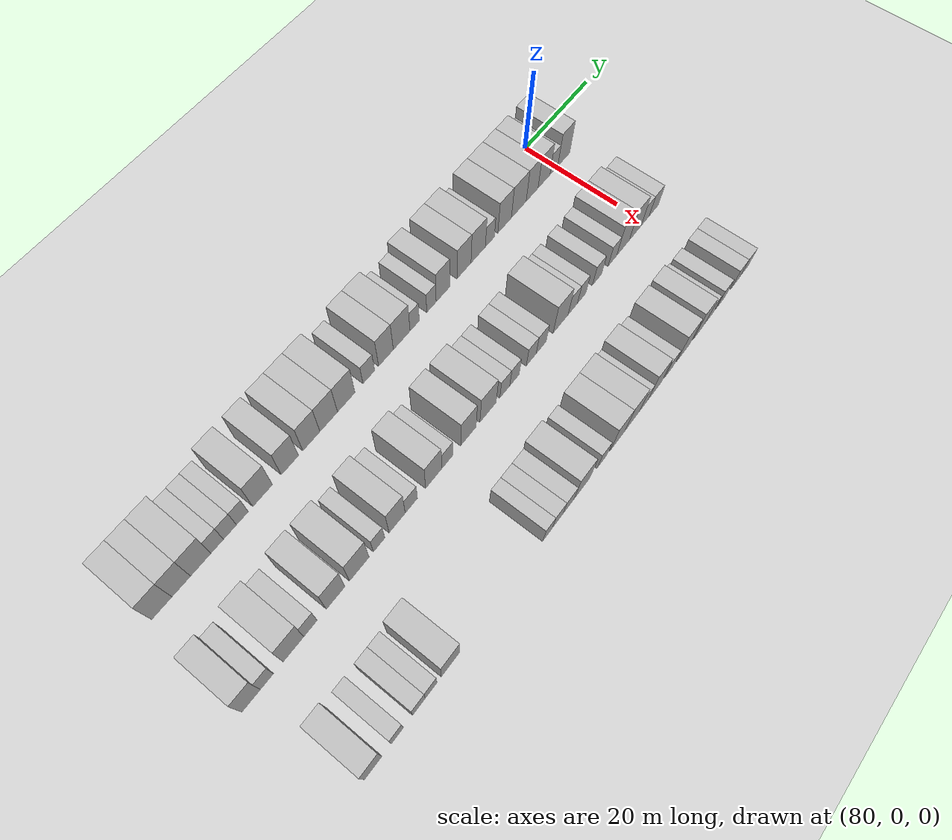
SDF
<sdf version="1.6">
 <world name="default">
  <include>
   <name>ground_plane_2</name>
   <uri>model://HANNAS_ground_plane</uri>
   <pose>100 0 0  0 0 0</pose>
  </include>
  <model name="building_582">
   <static>1</static>
   <pose>82.0000 -99.7617 0 0.000000 0.000000 0.000000</pose>
   <link name="link">
    <pose>0 0 4.50 0 0 0</pose>
    <collision name="collision"><geometry><box><size>10.0000 4.1171 9.0000</size></box></geometry></collision>
    <visual name="visual">
     <cast_shadows>0</cast_shadows>
     <geometry><box><size>10.0000 4.1171 9.0000</size></box></geometry>
     <material>
      <script>
       <uri>model://HANNAS_wall/materials/scripts</uri>
       <uri>model://HANNAS_wall/materials/textures</uri>
       <name>vrc/HANNAS_wall</name>
      </script>
     </material>
    </visual>
   </link>
  </model>
  <model name="building_583">
   <static>1</static>
   <pose>82.0000 -95.7777 0 0.000000 0.000000 0.000000</pose>
   <link name="link">
    <pose>0 0 4.50 0 0 0</pose>
    <collision name="collision"><geometry><box><size>10.0000 3.8509 9.0000</size></box></geometry></collision>
    <visual name="visual">
     <cast_shadows>0</cast_shadows>
     <geometry><box><size>10.0000 3.8509 9.0000</size></box></geometry>
     <material>
      <script>
       <uri>model://HANNAS_wall/materials/scripts</uri>
       <uri>model://HANNAS_wall/materials/textures</uri>
       <name>vrc/HANNAS_wall</name>
      </script>
     </material>
    </visual>
   </link>
  </model>
  <model name="building_584">
   <static>1</static>
   <pose>82.0000 -91.7163 0 0.000000 0.000000 0.000000</pose>
   <link name="link">
    <pose>0 0 4.50 0 0 0</pose>
    <collision name="collision"><geometry><box><size>10.0000 4.2718 9.0000</size></box></geometry></collision>
    <visual name="visual">
     <cast_shadows>0</cast_shadows>
     <geometry><box><size>10.0000 4.2718 9.0000</size></box></geometry>
     <material>
      <script>
       <uri>model://HANNAS_wall/materials/scripts</uri>
       <uri>model://HANNAS_wall/materials/textures</uri>
       <name>vrc/HANNAS_wall</name>
      </script>
     </material>
    </visual>
   </link>
  </model>
  <model name="building_585">
   <static>1</static>
   <pose>82.0000 -88.2272 0 0.000000 0.000000 0.000000</pose>
   <link name="link">
    <pose>0 0 3.00 0 0 0</pose>
    <collision name="collision"><geometry><box><size>10.0000 2.7066 6.0000</size></box></geometry></collision>
    <visual name="visual">
     <cast_shadows>0</cast_shadows>
     <geometry><box><size>10.0000 2.7066 6.0000</size></box></geometry>
     <material>
      <script>
       <uri>model://HANNAS_wall/materials/scripts</uri>
       <uri>model://HANNAS_wall/materials/textures</uri>
       <name>vrc/HANNAS_wall</name>
      </script>
     </material>
    </visual>
   </link>
  </model>
  <model name="building_586">
   <static>1</static>
   <pose>82.0000 -85.4655 0 0.000000 0.000000 0.000000</pose>
   <link name="link">
    <pose>0 0 3.00 0 0 0</pose>
    <collision name="collision"><geometry><box><size>10.0000 2.8168 6.0000</size></box></geometry></collision>
    <visual name="visual">
     <cast_shadows>0</cast_shadows>
     <geometry><box><size>10.0000 2.8168 6.0000</size></box></geometry>
     <material>
      <script>
       <uri>model://HANNAS_wall/materials/scripts</uri>
       <uri>model://HANNAS_wall/materials/textures</uri>
       <name>vrc/HANNAS_wall</name>
      </script>
     </material>
    </visual>
   </link>
  </model>
  <model name="building_587">
   <static>1</static>
   <pose>82.0000 -82.7577 0 0.000000 0.000000 0.000000</pose>
   <link name="link">
    <pose>0 0 3.00 0 0 0</pose>
    <collision name="collision"><geometry><box><size>10.0000 2.5988 6.0000</size></box></geometry></collision>
    <visual name="visual">
     <cast_shadows>0</cast_shadows>
     <geometry><box><size>10.0000 2.5988 6.0000</size></box></geometry>
     <material>
      <script>
       <uri>model://HANNAS_wall/materials/scripts</uri>
       <uri>model://HANNAS_wall/materials/textures</uri>
       <name>vrc/HANNAS_wall</name>
      </script>
     </material>
    </visual>
   </link>
  </model>
  <model name="building_588">
   <static>1</static>
   <pose>82.0000 -78.2452 0 0.000000 0.000000 0.000000</pose>
   <link name="link">
    <pose>0 0 4.50 0 0 0</pose>
    <collision name="collision"><geometry><box><size>10.0000 4.4263 9.0000</size></box></geometry></collision>
    <visual name="visual">
     <cast_shadows>0</cast_shadows>
     <geometry><box><size>10.0000 4.4263 9.0000</size></box></geometry>
     <material>
      <script>
       <uri>model://HANNAS_wall/materials/scripts</uri>
       <uri>model://HANNAS_wall/materials/textures</uri>
       <name>vrc/HANNAS_wall</name>
      </script>
     </material>
    </visual>
   </link>
  </model>
  <model name="building_589">
   <static>1</static>
   <pose>82.0000 -72.0355 0 0.000000 0.000000 0.000000</pose>
   <link name="link">
    <pose>0 0 4.50 0 0 0</pose>
    <collision name="collision"><geometry><box><size>10.0000 3.9930 9.0000</size></box></geometry></collision>
    <visual name="visual">
     <cast_shadows>0</cast_shadows>
     <geometry><box><size>10.0000 3.9930 9.0000</size></box></geometry>
     <material>
      <script>
       <uri>model://HANNAS_wall/materials/scripts</uri>
       <uri>model://HANNAS_wall/materials/textures</uri>
       <name>vrc/HANNAS_wall</name>
      </script>
     </material>
    </visual>
   </link>
  </model>
  <model name="building_590">
   <static>1</static>
   <pose>82.0000 -67.0117 0 0.000000 0.000000 0.000000</pose>
   <link name="link">
    <pose>0 0 4.50 0 0 0</pose>
    <collision name="collision"><geometry><box><size>10.0000 4.0546 9.0000</size></box></geometry></collision>
    <visual name="visual">
     <cast_shadows>0</cast_shadows>
     <geometry><box><size>10.0000 4.0546 9.0000</size></box></geometry>
     <material>
      <script>
       <uri>model://HANNAS_wall/materials/scripts</uri>
       <uri>model://HANNAS_wall/materials/textures</uri>
       <name>vrc/HANNAS_wall</name>
      </script>
     </material>
    </visual>
   </link>
  </model>
  <model name="building_591">
   <static>1</static>
   <pose>82.0000 -62.8643 0 0.000000 0.000000 0.000000</pose>
   <link name="link">
    <pose>0 0 4.50 0 0 0</pose>
    <collision name="collision"><geometry><box><size>10.0000 4.2402 9.0000</size></box></geometry></collision>
    <visual name="visual">
     <cast_shadows>0</cast_shadows>
     <geometry><box><size>10.0000 4.2402 9.0000</size></box></geometry>
     <material>
      <script>
       <uri>model://HANNAS_wall/materials/scripts</uri>
       <uri>model://HANNAS_wall/materials/textures</uri>
       <name>vrc/HANNAS_wall</name>
      </script>
     </material>
    </visual>
   </link>
  </model>
  <model name="building_592">
   <static>1</static>
   <pose>82.0000 -58.5962 0 0.000000 0.000000 0.000000</pose>
   <link name="link">
    <pose>0 0 4.50 0 0 0</pose>
    <collision name="collision"><geometry><box><size>10.0000 4.2959 9.0000</size></box></geometry></collision>
    <visual name="visual">
     <cast_shadows>0</cast_shadows>
     <geometry><box><size>10.0000 4.2959 9.0000</size></box></geometry>
     <material>
      <script>
       <uri>model://HANNAS_wall/materials/scripts</uri>
       <uri>model://HANNAS_wall/materials/textures</uri>
       <name>vrc/HANNAS_wall</name>
      </script>
     </material>
    </visual>
   </link>
  </model>
  <model name="building_593">
   <static>1</static>
   <pose>82.0000 -52.9808 0 0.000000 0.000000 0.000000</pose>
   <link name="link">
    <pose>0 0 3.00 0 0 0</pose>
    <collision name="collision"><geometry><box><size>10.0000 2.9347 6.0000</size></box></geometry></collision>
    <visual name="visual">
     <cast_shadows>0</cast_shadows>
     <geometry><box><size>10.0000 2.9347 6.0000</size></box></geometry>
     <material>
      <script>
       <uri>model://HANNAS_wall/materials/scripts</uri>
       <uri>model://HANNAS_wall/materials/textures</uri>
       <name>vrc/HANNAS_wall</name>
      </script>
     </material>
    </visual>
   </link>
  </model>
  <model name="building_594">
   <static>1</static>
   <pose>82.0000 -48.6151 0 0.000000 0.000000 0.000000</pose>
   <link name="link">
    <pose>0 0 4.50 0 0 0</pose>
    <collision name="collision"><geometry><box><size>10.0000 3.7967 9.0000</size></box></geometry></collision>
    <visual name="visual">
     <cast_shadows>0</cast_shadows>
     <geometry><box><size>10.0000 3.7967 9.0000</size></box></geometry>
     <material>
      <script>
       <uri>model://HANNAS_wall/materials/scripts</uri>
       <uri>model://HANNAS_wall/materials/textures</uri>
       <name>vrc/HANNAS_wall</name>
      </script>
     </material>
    </visual>
   </link>
  </model>
  <model name="building_595">
   <static>1</static>
   <pose>82.0000 -44.5301 0 0.000000 0.000000 0.000000</pose>
   <link name="link">
    <pose>0 0 4.50 0 0 0</pose>
    <collision name="collision"><geometry><box><size>10.0000 4.3734 9.0000</size></box></geometry></collision>
    <visual name="visual">
     <cast_shadows>0</cast_shadows>
     <geometry><box><size>10.0000 4.3734 9.0000</size></box></geometry>
     <material>
      <script>
       <uri>model://HANNAS_wall/materials/scripts</uri>
       <uri>model://HANNAS_wall/materials/textures</uri>
       <name>vrc/HANNAS_wall</name>
      </script>
     </material>
    </visual>
   </link>
  </model>
  <model name="building_596">
   <static>1</static>
   <pose>82.0000 -41.1171 0 0.000000 0.000000 0.000000</pose>
   <link name="link">
    <pose>0 0 3.00 0 0 0</pose>
    <collision name="collision"><geometry><box><size>10.0000 2.4524 6.0000</size></box></geometry></collision>
    <visual name="visual">
     <cast_shadows>0</cast_shadows>
     <geometry><box><size>10.0000 2.4524 6.0000</size></box></geometry>
     <material>
      <script>
       <uri>model://HANNAS_wall/materials/scripts</uri>
       <uri>model://HANNAS_wall/materials/textures</uri>
       <name>vrc/HANNAS_wall</name>
      </script>
     </material>
    </visual>
   </link>
  </model>
  <model name="building_597">
   <static>1</static>
   <pose>82.0000 -36.6206 0 0.000000 0.000000 0.000000</pose>
   <link name="link">
    <pose>0 0 3.00 0 0 0</pose>
    <collision name="collision"><geometry><box><size>10.0000 2.5406 6.0000</size></box></geometry></collision>
    <visual name="visual">
     <cast_shadows>0</cast_shadows>
     <geometry><box><size>10.0000 2.5406 6.0000</size></box></geometry>
     <material>
      <script>
       <uri>model://HANNAS_wall/materials/scripts</uri>
       <uri>model://HANNAS_wall/materials/textures</uri>
       <name>vrc/HANNAS_wall</name>
      </script>
     </material>
    </visual>
   </link>
  </model>
  <model name="building_598">
   <static>1</static>
   <pose>82.0000 -33.4809 0 0.000000 0.000000 0.000000</pose>
   <link name="link">
    <pose>0 0 4.50 0 0 0</pose>
    <collision name="collision"><geometry><box><size>10.0000 3.7387 9.0000</size></box></geometry></collision>
    <visual name="visual">
     <cast_shadows>0</cast_shadows>
     <geometry><box><size>10.0000 3.7387 9.0000</size></box></geometry>
     <material>
      <script>
       <uri>model://HANNAS_wall/materials/scripts</uri>
       <uri>model://HANNAS_wall/materials/textures</uri>
       <name>vrc/HANNAS_wall</name>
      </script>
     </material>
    </visual>
   </link>
  </model>
  <model name="building_599">
   <static>1</static>
   <pose>82.0000 -27.6373 0 0.000000 0.000000 0.000000</pose>
   <link name="link">
    <pose>0 0 4.50 0 0 0</pose>
    <collision name="collision"><geometry><box><size>10.0000 3.9487 9.0000</size></box></geometry></collision>
    <visual name="visual">
     <cast_shadows>0</cast_shadows>
     <geometry><box><size>10.0000 3.9487 9.0000</size></box></geometry>
     <material>
      <script>
       <uri>model://HANNAS_wall/materials/scripts</uri>
       <uri>model://HANNAS_wall/materials/textures</uri>
       <name>vrc/HANNAS_wall</name>
      </script>
     </material>
    </visual>
   </link>
  </model>
  <model name="building_600">
   <static>1</static>
   <pose>82.0000 -23.6133 0 0.000000 0.000000 0.000000</pose>
   <link name="link">
    <pose>0 0 4.50 0 0 0</pose>
    <collision name="collision"><geometry><box><size>10.0000 4.0992 9.0000</size></box></geometry></collision>
    <visual name="visual">
     <cast_shadows>0</cast_shadows>
     <geometry><box><size>10.0000 4.0992 9.0000</size></box></geometry>
     <material>
      <script>
       <uri>model://HANNAS_wall/materials/scripts</uri>
       <uri>model://HANNAS_wall/materials/textures</uri>
       <name>vrc/HANNAS_wall</name>
      </script>
     </material>
    </visual>
   </link>
  </model>
  <model name="building_601">
   <static>1</static>
   <pose>82.0000 -20.2449 0 0.000000 0.000000 0.000000</pose>
   <link name="link">
    <pose>0 0 3.00 0 0 0</pose>
    <collision name="collision"><geometry><box><size>10.0000 2.6376 6.0000</size></box></geometry></collision>
    <visual name="visual">
     <cast_shadows>0</cast_shadows>
     <geometry><box><size>10.0000 2.6376 6.0000</size></box></geometry>
     <material>
      <script>
       <uri>model://HANNAS_wall/materials/scripts</uri>
       <uri>model://HANNAS_wall/materials/textures</uri>
       <name>vrc/HANNAS_wall</name>
      </script>
     </material>
    </visual>
   </link>
  </model>
  <model name="building_602">
   <static>1</static>
   <pose>82.0000 -15.9267 0 0.000000 0.000000 0.000000</pose>
   <link name="link">
    <pose>0 0 4.50 0 0 0</pose>
    <collision name="collision"><geometry><box><size>10.0000 3.9989 9.0000</size></box></geometry></collision>
    <visual name="visual">
     <cast_shadows>0</cast_shadows>
     <geometry><box><size>10.0000 3.9989 9.0000</size></box></geometry>
     <material>
      <script>
       <uri>model://HANNAS_wall/materials/scripts</uri>
       <uri>model://HANNAS_wall/materials/textures</uri>
       <name>vrc/HANNAS_wall</name>
      </script>
     </material>
    </visual>
   </link>
  </model>
  <model name="building_603">
   <static>1</static>
   <pose>82.0000 -11.7010 0 0.000000 0.000000 0.000000</pose>
   <link name="link">
    <pose>0 0 4.50 0 0 0</pose>
    <collision name="collision"><geometry><box><size>10.0000 4.4524 9.0000</size></box></geometry></collision>
    <visual name="visual">
     <cast_shadows>0</cast_shadows>
     <geometry><box><size>10.0000 4.4524 9.0000</size></box></geometry>
     <material>
      <script>
       <uri>model://HANNAS_wall/materials/scripts</uri>
       <uri>model://HANNAS_wall/materials/textures</uri>
       <name>vrc/HANNAS_wall</name>
      </script>
     </material>
    </visual>
   </link>
  </model>
  <model name="building_604">
   <static>1</static>
   <pose>82.0000 -7.6648 0 0.000000 0.000000 0.000000</pose>
   <link name="link">
    <pose>0 0 4.50 0 0 0</pose>
    <collision name="collision"><geometry><box><size>10.0000 3.6200 9.0000</size></box></geometry></collision>
    <visual name="visual">
     <cast_shadows>0</cast_shadows>
     <geometry><box><size>10.0000 3.6200 9.0000</size></box></geometry>
     <material>
      <script>
       <uri>model://HANNAS_wall/materials/scripts</uri>
       <uri>model://HANNAS_wall/materials/textures</uri>
       <name>vrc/HANNAS_wall</name>
      </script>
     </material>
    </visual>
   </link>
  </model>
  <model name="building_605">
   <static>1</static>
   <pose>82.0000 -4.0126 0 0.000000 0.000000 0.000000</pose>
   <link name="link">
    <pose>0 0 4.50 0 0 0</pose>
    <collision name="collision"><geometry><box><size>10.0000 3.6843 9.0000</size></box></geometry></collision>
    <visual name="visual">
     <cast_shadows>0</cast_shadows>
     <geometry><box><size>10.0000 3.6843 9.0000</size></box></geometry>
     <material>
      <script>
       <uri>model://HANNAS_wall/materials/scripts</uri>
       <uri>model://HANNAS_wall/materials/textures</uri>
       <name>vrc/HANNAS_wall</name>
      </script>
     </material>
    </visual>
   </link>
  </model>
  <model name="building_606">
   <static>1</static>
   <pose>82.0000 -0.9319 0 0.000000 0.000000 0.000000</pose>
   <link name="link">
    <pose>0 0 3.00 0 0 0</pose>
    <collision name="collision"><geometry><box><size>10.0000 2.4771 6.0000</size></box></geometry></collision>
    <visual name="visual">
     <cast_shadows>0</cast_shadows>
     <geometry><box><size>10.0000 2.4771 6.0000</size></box></geometry>
     <material>
      <script>
       <uri>model://HANNAS_wall/materials/scripts</uri>
       <uri>model://HANNAS_wall/materials/textures</uri>
       <name>vrc/HANNAS_wall</name>
      </script>
     </material>
    </visual>
   </link>
  </model>
  <model name="building_607">
   <static>1</static>
   <pose>82.0000 2.1966 0 0.000000 0.000000 0.000000</pose>
   <link name="link">
    <pose>0 0 4.50 0 0 0</pose>
    <collision name="collision"><geometry><box><size>10.0000 3.7800 9.0000</size></box></geometry></collision>
    <visual name="visual">
     <cast_shadows>0</cast_shadows>
     <geometry><box><size>10.0000 3.7800 9.0000</size></box></geometry>
     <material>
      <script>
       <uri>model://HANNAS_wall/materials/scripts</uri>
       <uri>model://HANNAS_wall/materials/textures</uri>
       <name>vrc/HANNAS_wall</name>
      </script>
     </material>
    </visual>
   </link>
  </model>
  <model name="building_757">
   <static>1</static>
   <pose>101.0000 -101.0558 0 0.000000 0.000000 0.000000</pose>
   <link name="link">
    <pose>0 0 4.50 0 0 0</pose>
    <collision name="collision"><geometry><box><size>10.0000 3.7819 9.0000</size></box></geometry></collision>
    <visual name="visual">
     <cast_shadows>0</cast_shadows>
     <geometry><box><size>10.0000 3.7819 9.0000</size></box></geometry>
     <material>
      <script>
       <uri>model://HANNAS_wall/materials/scripts</uri>
       <uri>model://HANNAS_wall/materials/textures</uri>
       <name>vrc/HANNAS_wall</name>
      </script>
     </material>
    </visual>
   </link>
  </model>
  <model name="building_758">
   <static>1</static>
   <pose>101.0000 -97.8095 0 0.000000 0.000000 0.000000</pose>
   <link name="link">
    <pose>0 0 3.00 0 0 0</pose>
    <collision name="collision"><geometry><box><size>10.0000 2.7106 6.0000</size></box></geometry></collision>
    <visual name="visual">
     <cast_shadows>0</cast_shadows>
     <geometry><box><size>10.0000 2.7106 6.0000</size></box></geometry>
     <material>
      <script>
       <uri>model://HANNAS_wall/materials/scripts</uri>
       <uri>model://HANNAS_wall/materials/textures</uri>
       <name>vrc/HANNAS_wall</name>
      </script>
     </material>
    </visual>
   </link>
  </model>
  <model name="building_759">
   <static>1</static>
   <pose>101.0000 -92.2401 0 0.000000 0.000000 0.000000</pose>
   <link name="link">
    <pose>0 0 4.50 0 0 0</pose>
    <collision name="collision"><geometry><box><size>10.0000 4.4283 9.0000</size></box></geometry></collision>
    <visual name="visual">
     <cast_shadows>0</cast_shadows>
     <geometry><box><size>10.0000 4.4283 9.0000</size></box></geometry>
     <material>
      <script>
       <uri>model://HANNAS_wall/materials/scripts</uri>
       <uri>model://HANNAS_wall/materials/textures</uri>
       <name>vrc/HANNAS_wall</name>
      </script>
     </material>
    </visual>
   </link>
  </model>
  <model name="building_760">
   <static>1</static>
   <pose>101.0000 -88.5796 0 0.000000 0.000000 0.000000</pose>
   <link name="link">
    <pose>0 0 3.00 0 0 0</pose>
    <collision name="collision"><geometry><box><size>10.0000 2.8926 6.0000</size></box></geometry></collision>
    <visual name="visual">
     <cast_shadows>0</cast_shadows>
     <geometry><box><size>10.0000 2.8926 6.0000</size></box></geometry>
     <material>
      <script>
       <uri>model://HANNAS_wall/materials/scripts</uri>
       <uri>model://HANNAS_wall/materials/textures</uri>
       <name>vrc/HANNAS_wall</name>
      </script>
     </material>
    </visual>
   </link>
  </model>
  <model name="building_761">
   <static>1</static>
   <pose>101.0000 -83.0524 0 0.000000 0.000000 0.000000</pose>
   <link name="link">
    <pose>0 0 4.50 0 0 0</pose>
    <collision name="collision"><geometry><box><size>10.0000 4.1619 9.0000</size></box></geometry></collision>
    <visual name="visual">
     <cast_shadows>0</cast_shadows>
     <geometry><box><size>10.0000 4.1619 9.0000</size></box></geometry>
     <material>
      <script>
       <uri>model://HANNAS_wall/materials/scripts</uri>
       <uri>model://HANNAS_wall/materials/textures</uri>
       <name>vrc/HANNAS_wall</name>
      </script>
     </material>
    </visual>
   </link>
  </model>
  <model name="building_762">
   <static>1</static>
   <pose>101.0000 -77.7253 0 0.000000 0.000000 0.000000</pose>
   <link name="link">
    <pose>0 0 4.50 0 0 0</pose>
    <collision name="collision"><geometry><box><size>10.0000 4.4925 9.0000</size></box></geometry></collision>
    <visual name="visual">
     <cast_shadows>0</cast_shadows>
     <geometry><box><size>10.0000 4.4925 9.0000</size></box></geometry>
     <material>
      <script>
       <uri>model://HANNAS_wall/materials/scripts</uri>
       <uri>model://HANNAS_wall/materials/textures</uri>
       <name>vrc/HANNAS_wall</name>
      </script>
     </material>
    </visual>
   </link>
  </model>
  <model name="building_763">
   <static>1</static>
   <pose>101.0000 -73.1461 0 0.000000 0.000000 0.000000</pose>
   <link name="link">
    <pose>0 0 3.00 0 0 0</pose>
    <collision name="collision"><geometry><box><size>10.0000 2.6659 6.0000</size></box></geometry></collision>
    <visual name="visual">
     <cast_shadows>0</cast_shadows>
     <geometry><box><size>10.0000 2.6659 6.0000</size></box></geometry>
     <material>
      <script>
       <uri>model://HANNAS_wall/materials/scripts</uri>
       <uri>model://HANNAS_wall/materials/textures</uri>
       <name>vrc/HANNAS_wall</name>
      </script>
     </material>
    </visual>
   </link>
  </model>
  <model name="building_764">
   <static>1</static>
   <pose>101.0000 -68.8882 0 0.000000 0.000000 0.000000</pose>
   <link name="link">
    <pose>0 0 4.50 0 0 0</pose>
    <collision name="collision"><geometry><box><size>10.0000 3.8499 9.0000</size></box></geometry></collision>
    <visual name="visual">
     <cast_shadows>0</cast_shadows>
     <geometry><box><size>10.0000 3.8499 9.0000</size></box></geometry>
     <material>
      <script>
       <uri>model://HANNAS_wall/materials/scripts</uri>
       <uri>model://HANNAS_wall/materials/textures</uri>
       <name>vrc/HANNAS_wall</name>
      </script>
     </material>
    </visual>
   </link>
  </model>
  <model name="building_765">
   <static>1</static>
   <pose>101.0000 -65.4746 0 0.000000 0.000000 0.000000</pose>
   <link name="link">
    <pose>0 0 3.00 0 0 0</pose>
    <collision name="collision"><geometry><box><size>10.0000 2.9772 6.0000</size></box></geometry></collision>
    <visual name="visual">
     <cast_shadows>0</cast_shadows>
     <geometry><box><size>10.0000 2.9772 6.0000</size></box></geometry>
     <material>
      <script>
       <uri>model://HANNAS_wall/materials/scripts</uri>
       <uri>model://HANNAS_wall/materials/textures</uri>
       <name>vrc/HANNAS_wall</name>
      </script>
     </material>
    </visual>
   </link>
  </model>
  <model name="building_766">
   <static>1</static>
   <pose>101.0000 -59.9793 0 0.000000 0.000000 0.000000</pose>
   <link name="link">
    <pose>0 0 4.50 0 0 0</pose>
    <collision name="collision"><geometry><box><size>10.0000 4.0134 9.0000</size></box></geometry></collision>
    <visual name="visual">
     <cast_shadows>0</cast_shadows>
     <geometry><box><size>10.0000 4.0134 9.0000</size></box></geometry>
     <material>
      <script>
       <uri>model://HANNAS_wall/materials/scripts</uri>
       <uri>model://HANNAS_wall/materials/textures</uri>
       <name>vrc/HANNAS_wall</name>
      </script>
     </material>
    </visual>
   </link>
  </model>
  <model name="building_767">
   <static>1</static>
   <pose>101.0000 -56.5694 0 0.000000 0.000000 0.000000</pose>
   <link name="link">
    <pose>0 0 3.00 0 0 0</pose>
    <collision name="collision"><geometry><box><size>10.0000 2.8065 6.0000</size></box></geometry></collision>
    <visual name="visual">
     <cast_shadows>0</cast_shadows>
     <geometry><box><size>10.0000 2.8065 6.0000</size></box></geometry>
     <material>
      <script>
       <uri>model://HANNAS_wall/materials/scripts</uri>
       <uri>model://HANNAS_wall/materials/textures</uri>
       <name>vrc/HANNAS_wall</name>
      </script>
     </material>
    </visual>
   </link>
  </model>
  <model name="building_768">
   <static>1</static>
   <pose>101.0000 -51.1740 0 0.000000 0.000000 0.000000</pose>
   <link name="link">
    <pose>0 0 4.50 0 0 0</pose>
    <collision name="collision"><geometry><box><size>10.0000 3.9842 9.0000</size></box></geometry></collision>
    <visual name="visual">
     <cast_shadows>0</cast_shadows>
     <geometry><box><size>10.0000 3.9842 9.0000</size></box></geometry>
     <material>
      <script>
       <uri>model://HANNAS_wall/materials/scripts</uri>
       <uri>model://HANNAS_wall/materials/textures</uri>
       <name>vrc/HANNAS_wall</name>
      </script>
     </material>
    </visual>
   </link>
  </model>
  <model name="building_769">
   <static>1</static>
   <pose>101.0000 -46.0266 0 0.000000 0.000000 0.000000</pose>
   <link name="link">
    <pose>0 0 4.50 0 0 0</pose>
    <collision name="collision"><geometry><box><size>10.0000 4.3106 9.0000</size></box></geometry></collision>
    <visual name="visual">
     <cast_shadows>0</cast_shadows>
     <geometry><box><size>10.0000 4.3106 9.0000</size></box></geometry>
     <material>
      <script>
       <uri>model://HANNAS_wall/materials/scripts</uri>
       <uri>model://HANNAS_wall/materials/textures</uri>
       <name>vrc/HANNAS_wall</name>
      </script>
     </material>
    </visual>
   </link>
  </model>
  <model name="building_770">
   <static>1</static>
   <pose>101.0000 -41.5201 0 0.000000 0.000000 0.000000</pose>
   <link name="link">
    <pose>0 0 3.00 0 0 0</pose>
    <collision name="collision"><geometry><box><size>10.0000 2.7024 6.0000</size></box></geometry></collision>
    <visual name="visual">
     <cast_shadows>0</cast_shadows>
     <geometry><box><size>10.0000 2.7024 6.0000</size></box></geometry>
     <material>
      <script>
       <uri>model://HANNAS_wall/materials/scripts</uri>
       <uri>model://HANNAS_wall/materials/textures</uri>
       <name>vrc/HANNAS_wall</name>
      </script>
     </material>
    </visual>
   </link>
  </model>
  <model name="building_771">
   <static>1</static>
   <pose>101.0000 -38.9002 0 0.000000 0.000000 0.000000</pose>
   <link name="link">
    <pose>0 0 3.00 0 0 0</pose>
    <collision name="collision"><geometry><box><size>10.0000 2.5373 6.0000</size></box></geometry></collision>
    <visual name="visual">
     <cast_shadows>0</cast_shadows>
     <geometry><box><size>10.0000 2.5373 6.0000</size></box></geometry>
     <material>
      <script>
       <uri>model://HANNAS_wall/materials/scripts</uri>
       <uri>model://HANNAS_wall/materials/textures</uri>
       <name>vrc/HANNAS_wall</name>
      </script>
     </material>
    </visual>
   </link>
  </model>
  <model name="building_772">
   <static>1</static>
   <pose>101.0000 -34.2424 0 0.000000 0.000000 0.000000</pose>
   <link name="link">
    <pose>0 0 3.00 0 0 0</pose>
    <collision name="collision"><geometry><box><size>10.0000 2.7784 6.0000</size></box></geometry></collision>
    <visual name="visual">
     <cast_shadows>0</cast_shadows>
     <geometry><box><size>10.0000 2.7784 6.0000</size></box></geometry>
     <material>
      <script>
       <uri>model://HANNAS_wall/materials/scripts</uri>
       <uri>model://HANNAS_wall/materials/textures</uri>
       <name>vrc/HANNAS_wall</name>
      </script>
     </material>
    </visual>
   </link>
  </model>
  <model name="building_773">
   <static>1</static>
   <pose>101.0000 -31.4450 0 0.000000 0.000000 0.000000</pose>
   <link name="link">
    <pose>0 0 3.00 0 0 0</pose>
    <collision name="collision"><geometry><box><size>10.0000 2.8164 6.0000</size></box></geometry></collision>
    <visual name="visual">
     <cast_shadows>0</cast_shadows>
     <geometry><box><size>10.0000 2.8164 6.0000</size></box></geometry>
     <material>
      <script>
       <uri>model://HANNAS_wall/materials/scripts</uri>
       <uri>model://HANNAS_wall/materials/textures</uri>
       <name>vrc/HANNAS_wall</name>
      </script>
     </material>
    </visual>
   </link>
  </model>
  <model name="building_774">
   <static>1</static>
   <pose>101.0000 -25.8760 0 0.000000 0.000000 0.000000</pose>
   <link name="link">
    <pose>0 0 4.50 0 0 0</pose>
    <collision name="collision"><geometry><box><size>10.0000 4.3215 9.0000</size></box></geometry></collision>
    <visual name="visual">
     <cast_shadows>0</cast_shadows>
     <geometry><box><size>10.0000 4.3215 9.0000</size></box></geometry>
     <material>
      <script>
       <uri>model://HANNAS_wall/materials/scripts</uri>
       <uri>model://HANNAS_wall/materials/textures</uri>
       <name>vrc/HANNAS_wall</name>
      </script>
     </material>
    </visual>
   </link>
  </model>
  <model name="building_775">
   <static>1</static>
   <pose>101.0000 -22.3218 0 0.000000 0.000000 0.000000</pose>
   <link name="link">
    <pose>0 0 3.00 0 0 0</pose>
    <collision name="collision"><geometry><box><size>10.0000 2.7869 6.0000</size></box></geometry></collision>
    <visual name="visual">
     <cast_shadows>0</cast_shadows>
     <geometry><box><size>10.0000 2.7869 6.0000</size></box></geometry>
     <material>
      <script>
       <uri>model://HANNAS_wall/materials/scripts</uri>
       <uri>model://HANNAS_wall/materials/textures</uri>
       <name>vrc/HANNAS_wall</name>
      </script>
     </material>
    </visual>
   </link>
  </model>
  <model name="building_776">
   <static>1</static>
   <pose>101.0000 -19.6891 0 0.000000 0.000000 0.000000</pose>
   <link name="link">
    <pose>0 0 3.00 0 0 0</pose>
    <collision name="collision"><geometry><box><size>10.0000 2.4786 6.0000</size></box></geometry></collision>
    <visual name="visual">
     <cast_shadows>0</cast_shadows>
     <geometry><box><size>10.0000 2.4786 6.0000</size></box></geometry>
     <material>
      <script>
       <uri>model://HANNAS_wall/materials/scripts</uri>
       <uri>model://HANNAS_wall/materials/textures</uri>
       <name>vrc/HANNAS_wall</name>
      </script>
     </material>
    </visual>
   </link>
  </model>
  <model name="building_777">
   <static>1</static>
   <pose>101.0000 -15.0525 0 0.000000 0.000000 0.000000</pose>
   <link name="link">
    <pose>0 0 3.00 0 0 0</pose>
    <collision name="collision"><geometry><box><size>10.0000 2.7947 6.0000</size></box></geometry></collision>
    <visual name="visual">
     <cast_shadows>0</cast_shadows>
     <geometry><box><size>10.0000 2.7947 6.0000</size></box></geometry>
     <material>
      <script>
       <uri>model://HANNAS_wall/materials/scripts</uri>
       <uri>model://HANNAS_wall/materials/textures</uri>
       <name>vrc/HANNAS_wall</name>
      </script>
     </material>
    </visual>
   </link>
  </model>
  <model name="building_778">
   <static>1</static>
   <pose>101.0000 -10.3406 0 0.000000 0.000000 0.000000</pose>
   <link name="link">
    <pose>0 0 3.00 0 0 0</pose>
    <collision name="collision"><geometry><box><size>10.0000 2.6291 6.0000</size></box></geometry></collision>
    <visual name="visual">
     <cast_shadows>0</cast_shadows>
     <geometry><box><size>10.0000 2.6291 6.0000</size></box></geometry>
     <material>
      <script>
       <uri>model://HANNAS_wall/materials/scripts</uri>
       <uri>model://HANNAS_wall/materials/textures</uri>
       <name>vrc/HANNAS_wall</name>
      </script>
     </material>
    </visual>
   </link>
  </model>
  <model name="building_779">
   <static>1</static>
   <pose>101.0000 -7.0160 0 0.000000 0.000000 0.000000</pose>
   <link name="link">
    <pose>0 0 4.50 0 0 0</pose>
    <collision name="collision"><geometry><box><size>10.0000 4.0201 9.0000</size></box></geometry></collision>
    <visual name="visual">
     <cast_shadows>0</cast_shadows>
     <geometry><box><size>10.0000 4.0201 9.0000</size></box></geometry>
     <material>
      <script>
       <uri>model://HANNAS_wall/materials/scripts</uri>
       <uri>model://HANNAS_wall/materials/textures</uri>
       <name>vrc/HANNAS_wall</name>
      </script>
     </material>
    </visual>
   </link>
  </model>
  <model name="building_780">
   <static>1</static>
   <pose>101.0000 -3.1424 0 0.000000 0.000000 0.000000</pose>
   <link name="link">
    <pose>0 0 4.50 0 0 0</pose>
    <collision name="collision"><geometry><box><size>10.0000 3.7270 9.0000</size></box></geometry></collision>
    <visual name="visual">
     <cast_shadows>0</cast_shadows>
     <geometry><box><size>10.0000 3.7270 9.0000</size></box></geometry>
     <material>
      <script>
       <uri>model://HANNAS_wall/materials/scripts</uri>
       <uri>model://HANNAS_wall/materials/textures</uri>
       <name>vrc/HANNAS_wall</name>
      </script>
     </material>
    </visual>
   </link>
  </model>
  <model name="building_781">
   <static>1</static>
   <pose>101.0000 0.0449 0 0.000000 0.000000 0.000000</pose>
   <link name="link">
    <pose>0 0 3.00 0 0 0</pose>
    <collision name="collision"><geometry><box><size>10.0000 2.6476 6.0000</size></box></geometry></collision>
    <visual name="visual">
     <cast_shadows>0</cast_shadows>
     <geometry><box><size>10.0000 2.6476 6.0000</size></box></geometry>
     <material>
      <script>
       <uri>model://HANNAS_wall/materials/scripts</uri>
       <uri>model://HANNAS_wall/materials/textures</uri>
       <name>vrc/HANNAS_wall</name>
      </script>
     </material>
    </visual>
   </link>
  </model>
  <model name="building_782">
   <static>1</static>
   <pose>101.0000 2.8542 0 0.000000 0.000000 0.000000</pose>
   <link name="link">
    <pose>0 0 3.00 0 0 0</pose>
    <collision name="collision"><geometry><box><size>10.0000 2.9711 6.0000</size></box></geometry></collision>
    <visual name="visual">
     <cast_shadows>0</cast_shadows>
     <geometry><box><size>10.0000 2.9711 6.0000</size></box></geometry>
     <material>
      <script>
       <uri>model://HANNAS_wall/materials/scripts</uri>
       <uri>model://HANNAS_wall/materials/textures</uri>
       <name>vrc/HANNAS_wall</name>
      </script>
     </material>
    </visual>
   </link>
  </model>
  <model name="building_917">
   <static>1</static>
   <pose>120.0000 -97.1365 0 0.000000 0.000000 0.000000</pose>
   <link name="link">
    <pose>0 0 4.50 0 0 0</pose>
    <collision name="collision"><geometry><box><size>10.0000 3.7040 9.0000</size></box></geometry></collision>
    <visual name="visual">
     <cast_shadows>0</cast_shadows>
     <geometry><box><size>10.0000 3.7040 9.0000</size></box></geometry>
     <material>
      <script>
       <uri>model://HANNAS_wall/materials/scripts</uri>
       <uri>model://HANNAS_wall/materials/textures</uri>
       <name>vrc/HANNAS_wall</name>
      </script>
     </material>
    </visual>
   </link>
  </model>
  <model name="building_918">
   <static>1</static>
   <pose>120.0000 -91.9768 0 0.000000 0.000000 0.000000</pose>
   <link name="link">
    <pose>0 0 3.00 0 0 0</pose>
    <collision name="collision"><geometry><box><size>10.0000 2.6154 6.0000</size></box></geometry></collision>
    <visual name="visual">
     <cast_shadows>0</cast_shadows>
     <geometry><box><size>10.0000 2.6154 6.0000</size></box></geometry>
     <material>
      <script>
       <uri>model://HANNAS_wall/materials/scripts</uri>
       <uri>model://HANNAS_wall/materials/textures</uri>
       <name>vrc/HANNAS_wall</name>
      </script>
     </material>
    </visual>
   </link>
  </model>
  <model name="building_919">
   <static>1</static>
   <pose>120.0000 -87.2687 0 0.000000 0.000000 0.000000</pose>
   <link name="link">
    <pose>0 0 3.00 0 0 0</pose>
    <collision name="collision"><geometry><box><size>10.0000 2.8007 6.0000</size></box></geometry></collision>
    <visual name="visual">
     <cast_shadows>0</cast_shadows>
     <geometry><box><size>10.0000 2.8007 6.0000</size></box></geometry>
     <material>
      <script>
       <uri>model://HANNAS_wall/materials/scripts</uri>
       <uri>model://HANNAS_wall/materials/textures</uri>
       <name>vrc/HANNAS_wall</name>
      </script>
     </material>
    </visual>
   </link>
  </model>
  <model name="building_920">
   <static>1</static>
   <pose>120.0000 -84.5424 0 0.000000 0.000000 0.000000</pose>
   <link name="link">
    <pose>0 0 3.00 0 0 0</pose>
    <collision name="collision"><geometry><box><size>10.0000 2.6519 6.0000</size></box></geometry></collision>
    <visual name="visual">
     <cast_shadows>0</cast_shadows>
     <geometry><box><size>10.0000 2.6519 6.0000</size></box></geometry>
     <material>
      <script>
       <uri>model://HANNAS_wall/materials/scripts</uri>
       <uri>model://HANNAS_wall/materials/textures</uri>
       <name>vrc/HANNAS_wall</name>
      </script>
     </material>
    </visual>
   </link>
  </model>
  <model name="building_921">
   <static>1</static>
   <pose>120.0000 -80.1507 0 0.000000 0.000000 0.000000</pose>
   <link name="link">
    <pose>0 0 4.50 0 0 0</pose>
    <collision name="collision"><geometry><box><size>10.0000 4.1316 9.0000</size></box></geometry></collision>
    <visual name="visual">
     <cast_shadows>0</cast_shadows>
     <geometry><box><size>10.0000 4.1316 9.0000</size></box></geometry>
     <material>
      <script>
       <uri>model://HANNAS_wall/materials/scripts</uri>
       <uri>model://HANNAS_wall/materials/textures</uri>
       <name>vrc/HANNAS_wall</name>
      </script>
     </material>
    </visual>
   </link>
  </model>
  <model name="building_922">
   <static>1</static>
   <pose>120.0000 -56.3911 0 0.000000 0.000000 0.000000</pose>
   <link name="link">
    <pose>0 0 3.00 0 0 0</pose>
    <collision name="collision"><geometry><box><size>10.0000 2.4625 6.0000</size></box></geometry></collision>
    <visual name="visual">
     <cast_shadows>0</cast_shadows>
     <geometry><box><size>10.0000 2.4625 6.0000</size></box></geometry>
     <material>
      <script>
       <uri>model://HANNAS_wall/materials/scripts</uri>
       <uri>model://HANNAS_wall/materials/textures</uri>
       <name>vrc/HANNAS_wall</name>
      </script>
     </material>
    </visual>
   </link>
  </model>
  <model name="building_923">
   <static>1</static>
   <pose>120.0000 -53.7504 0 0.000000 0.000000 0.000000</pose>
   <link name="link">
    <pose>0 0 3.00 0 0 0</pose>
    <collision name="collision"><geometry><box><size>10.0000 2.8188 6.0000</size></box></geometry></collision>
    <visual name="visual">
     <cast_shadows>0</cast_shadows>
     <geometry><box><size>10.0000 2.8188 6.0000</size></box></geometry>
     <material>
      <script>
       <uri>model://HANNAS_wall/materials/scripts</uri>
       <uri>model://HANNAS_wall/materials/textures</uri>
       <name>vrc/HANNAS_wall</name>
      </script>
     </material>
    </visual>
   </link>
  </model>
  <model name="building_924">
   <static>1</static>
   <pose>120.0000 -50.8642 0 0.000000 0.000000 0.000000</pose>
   <link name="link">
    <pose>0 0 3.00 0 0 0</pose>
    <collision name="collision"><geometry><box><size>10.0000 2.9536 6.0000</size></box></geometry></collision>
    <visual name="visual">
     <cast_shadows>0</cast_shadows>
     <geometry><box><size>10.0000 2.9536 6.0000</size></box></geometry>
     <material>
      <script>
       <uri>model://HANNAS_wall/materials/scripts</uri>
       <uri>model://HANNAS_wall/materials/textures</uri>
       <name>vrc/HANNAS_wall</name>
      </script>
     </material>
    </visual>
   </link>
  </model>
  <model name="building_925">
   <static>1</static>
   <pose>120.0000 -47.2340 0 0.000000 0.000000 0.000000</pose>
   <link name="link">
    <pose>0 0 4.50 0 0 0</pose>
    <collision name="collision"><geometry><box><size>10.0000 4.3068 9.0000</size></box></geometry></collision>
    <visual name="visual">
     <cast_shadows>0</cast_shadows>
     <geometry><box><size>10.0000 4.3068 9.0000</size></box></geometry>
     <material>
      <script>
       <uri>model://HANNAS_wall/materials/scripts</uri>
       <uri>model://HANNAS_wall/materials/textures</uri>
       <name>vrc/HANNAS_wall</name>
      </script>
     </material>
    </visual>
   </link>
  </model>
  <model name="building_926">
   <static>1</static>
   <pose>120.0000 -41.7572 0 0.000000 0.000000 0.000000</pose>
   <link name="link">
    <pose>0 0 3.00 0 0 0</pose>
    <collision name="collision"><geometry><box><size>10.0000 2.6468 6.0000</size></box></geometry></collision>
    <visual name="visual">
     <cast_shadows>0</cast_shadows>
     <geometry><box><size>10.0000 2.6468 6.0000</size></box></geometry>
     <material>
      <script>
       <uri>model://HANNAS_wall/materials/scripts</uri>
       <uri>model://HANNAS_wall/materials/textures</uri>
       <name>vrc/HANNAS_wall</name>
      </script>
     </material>
    </visual>
   </link>
  </model>
  <model name="building_927">
   <static>1</static>
   <pose>120.0000 -37.3449 0 0.000000 0.000000 0.000000</pose>
   <link name="link">
    <pose>0 0 4.50 0 0 0</pose>
    <collision name="collision"><geometry><box><size>10.0000 4.1778 9.0000</size></box></geometry></collision>
    <visual name="visual">
     <cast_shadows>0</cast_shadows>
     <geometry><box><size>10.0000 4.1778 9.0000</size></box></geometry>
     <material>
      <script>
       <uri>model://HANNAS_wall/materials/scripts</uri>
       <uri>model://HANNAS_wall/materials/textures</uri>
       <name>vrc/HANNAS_wall</name>
      </script>
     </material>
    </visual>
   </link>
  </model>
  <model name="building_928">
   <static>1</static>
   <pose>120.0000 -33.1360 0 0.000000 0.000000 0.000000</pose>
   <link name="link">
    <pose>0 0 4.50 0 0 0</pose>
    <collision name="collision"><geometry><box><size>10.0000 4.2401 9.0000</size></box></geometry></collision>
    <visual name="visual">
     <cast_shadows>0</cast_shadows>
     <geometry><box><size>10.0000 4.2401 9.0000</size></box></geometry>
     <material>
      <script>
       <uri>model://HANNAS_wall/materials/scripts</uri>
       <uri>model://HANNAS_wall/materials/textures</uri>
       <name>vrc/HANNAS_wall</name>
      </script>
     </material>
    </visual>
   </link>
  </model>
  <model name="building_929">
   <static>1</static>
   <pose>120.0000 -29.7364 0 0.000000 0.000000 0.000000</pose>
   <link name="link">
    <pose>0 0 3.00 0 0 0</pose>
    <collision name="collision"><geometry><box><size>10.0000 2.5590 6.0000</size></box></geometry></collision>
    <visual name="visual">
     <cast_shadows>0</cast_shadows>
     <geometry><box><size>10.0000 2.5590 6.0000</size></box></geometry>
     <material>
      <script>
       <uri>model://HANNAS_wall/materials/scripts</uri>
       <uri>model://HANNAS_wall/materials/textures</uri>
       <name>vrc/HANNAS_wall</name>
      </script>
     </material>
    </visual>
   </link>
  </model>
  <model name="building_930">
   <static>1</static>
   <pose>120.0000 -26.5004 0 0.000000 0.000000 0.000000</pose>
   <link name="link">
    <pose>0 0 4.50 0 0 0</pose>
    <collision name="collision"><geometry><box><size>10.0000 3.9130 9.0000</size></box></geometry></collision>
    <visual name="visual">
     <cast_shadows>0</cast_shadows>
     <geometry><box><size>10.0000 3.9130 9.0000</size></box></geometry>
     <material>
      <script>
       <uri>model://HANNAS_wall/materials/scripts</uri>
       <uri>model://HANNAS_wall/materials/textures</uri>
       <name>vrc/HANNAS_wall</name>
      </script>
     </material>
    </visual>
   </link>
  </model>
  <model name="building_931">
   <static>1</static>
   <pose>120.0000 -22.2276 0 0.000000 0.000000 0.000000</pose>
   <link name="link">
    <pose>0 0 3.00 0 0 0</pose>
    <collision name="collision"><geometry><box><size>10.0000 2.6326 6.0000</size></box></geometry></collision>
    <visual name="visual">
     <cast_shadows>0</cast_shadows>
     <geometry><box><size>10.0000 2.6326 6.0000</size></box></geometry>
     <material>
      <script>
       <uri>model://HANNAS_wall/materials/scripts</uri>
       <uri>model://HANNAS_wall/materials/textures</uri>
       <name>vrc/HANNAS_wall</name>
      </script>
     </material>
    </visual>
   </link>
  </model>
  <model name="building_932">
   <static>1</static>
   <pose>120.0000 -17.8433 0 0.000000 0.000000 0.000000</pose>
   <link name="link">
    <pose>0 0 4.50 0 0 0</pose>
    <collision name="collision"><geometry><box><size>10.0000 4.1361 9.0000</size></box></geometry></collision>
    <visual name="visual">
     <cast_shadows>0</cast_shadows>
     <geometry><box><size>10.0000 4.1361 9.0000</size></box></geometry>
     <material>
      <script>
       <uri>model://HANNAS_wall/materials/scripts</uri>
       <uri>model://HANNAS_wall/materials/textures</uri>
       <name>vrc/HANNAS_wall</name>
      </script>
     </material>
    </visual>
   </link>
  </model>
  <model name="building_933">
   <static>1</static>
   <pose>120.0000 -12.9545 0 0.000000 0.000000 0.000000</pose>
   <link name="link">
    <pose>0 0 4.50 0 0 0</pose>
    <collision name="collision"><geometry><box><size>10.0000 3.6415 9.0000</size></box></geometry></collision>
    <visual name="visual">
     <cast_shadows>0</cast_shadows>
     <geometry><box><size>10.0000 3.6415 9.0000</size></box></geometry>
     <material>
      <script>
       <uri>model://HANNAS_wall/materials/scripts</uri>
       <uri>model://HANNAS_wall/materials/textures</uri>
       <name>vrc/HANNAS_wall</name>
      </script>
     </material>
    </visual>
   </link>
  </model>
  <model name="building_934">
   <static>1</static>
   <pose>120.0000 -9.7849 0 0.000000 0.000000 0.000000</pose>
   <link name="link">
    <pose>0 0 3.00 0 0 0</pose>
    <collision name="collision"><geometry><box><size>10.0000 2.6976 6.0000</size></box></geometry></collision>
    <visual name="visual">
     <cast_shadows>0</cast_shadows>
     <geometry><box><size>10.0000 2.6976 6.0000</size></box></geometry>
     <material>
      <script>
       <uri>model://HANNAS_wall/materials/scripts</uri>
       <uri>model://HANNAS_wall/materials/textures</uri>
       <name>vrc/HANNAS_wall</name>
      </script>
     </material>
    </visual>
   </link>
  </model>
  <model name="building_935">
   <static>1</static>
   <pose>120.0000 -6.0096 0 0.000000 0.000000 0.000000</pose>
   <link name="link">
    <pose>0 0 3.00 0 0 0</pose>
    <collision name="collision"><geometry><box><size>10.0000 2.8532 6.0000</size></box></geometry></collision>
    <visual name="visual">
     <cast_shadows>0</cast_shadows>
     <geometry><box><size>10.0000 2.8532 6.0000</size></box></geometry>
     <material>
      <script>
       <uri>model://HANNAS_wall/materials/scripts</uri>
       <uri>model://HANNAS_wall/materials/textures</uri>
       <name>vrc/HANNAS_wall</name>
      </script>
     </material>
    </visual>
   </link>
  </model>
  <model name="building_936">
   <static>1</static>
   <pose>120.0000 -1.1515 0 0.000000 0.000000 0.000000</pose>
   <link name="link">
    <pose>0 0 3.00 0 0 0</pose>
    <collision name="collision"><geometry><box><size>10.0000 2.8630 6.0000</size></box></geometry></collision>
    <visual name="visual">
     <cast_shadows>0</cast_shadows>
     <geometry><box><size>10.0000 2.8630 6.0000</size></box></geometry>
     <material>
      <script>
       <uri>model://HANNAS_wall/materials/scripts</uri>
       <uri>model://HANNAS_wall/materials/textures</uri>
       <name>vrc/HANNAS_wall</name>
      </script>
     </material>
    </visual>
   </link>
  </model>
  <model name="building_937">
   <static>1</static>
   <pose>120.0000 1.6663 0 0.000000 0.000000 0.000000</pose>
   <link name="link">
    <pose>0 0 3.00 0 0 0</pose>
    <collision name="collision"><geometry><box><size>10.0000 2.7726 6.0000</size></box></geometry></collision>
    <visual name="visual">
     <cast_shadows>0</cast_shadows>
     <geometry><box><size>10.0000 2.7726 6.0000</size></box></geometry>
     <material>
      <script>
       <uri>model://HANNAS_wall/materials/scripts</uri>
       <uri>model://HANNAS_wall/materials/textures</uri>
       <name>vrc/HANNAS_wall</name>
      </script>
     </material>
    </visual>
   </link>
  </model>
 </world>
</sdf>
